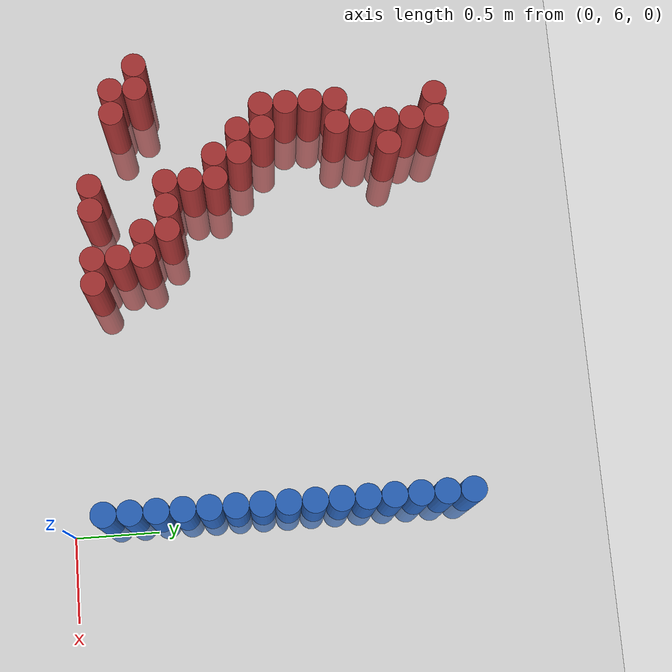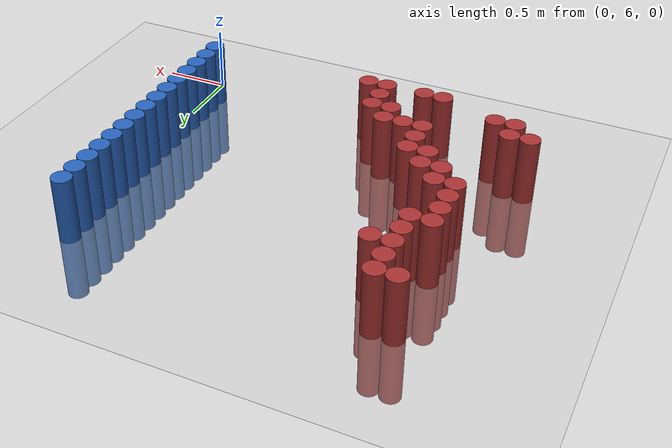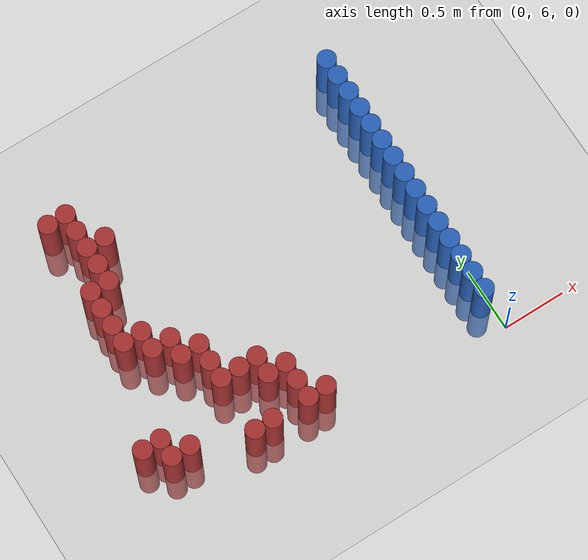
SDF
<sdf version="1.6">
 <world name="default">
  <model name="ground_plane">
   <static>1</static>
   <link name="link">
    <collision name="collision">
     <geometry><plane><normal>0 0 1</normal><size>100 100</size></plane></geometry>
     <surface><friction><ode><mu>100</mu><mu2>50</mu2></ode></friction></surface>
    </collision>
    <visual name="visual">
     <cast_shadows>0</cast_shadows>
     <geometry><plane><normal>0 0 1</normal><size>100 100</size></plane></geometry>
     <material>
      <script><uri>file://media/materials/scripts/gazebo.material</uri><name>Gazebo/Grey</name></script>
     </material>
    </visual>
   </link>
  </model>
  <model name="unit_cylinder_172">
   <static>1</static>
   <pose>-2.775000 6.525000 0.000000 0.000000 0.000000 0.000000</pose>
   <link name="link">
    <inertial>
     <mass>1</mass>
     <inertia><ixx>0.145833</ixx><ixy>0</ixy><ixz>0</ixz><iyy>0.145833</iyy><iyz>0</iyz><izz>0.125</izz></inertia>
    </inertial>
    <collision name="collision">
     <geometry><cylinder><radius>0.075000</radius><length>1</length></cylinder></geometry>
    </collision>
    <visual name="visual">
     <geometry><cylinder><radius>0.075000</radius><length>1</length></cylinder></geometry>
     <material>
      <ambient>0.648000 0.192000 0.192000 1</ambient>
      <diffuse>0.648000 0.192000 0.192000 1</diffuse>
     </material>
     <material>
      <script><name>Gazebo/Grey</name><uri>file://media/materials/scripts/gazebo.material</uri></script>
     </material>
    </visual>
   </link>
  </model>
  <model name="unit_cylinder_175">
   <static>1</static>
   <pose>-2.625000 6.375000 0.000000 0.000000 0.000000 0.000000</pose>
   <link name="link">
    <inertial>
     <mass>1</mass>
     <inertia><ixx>0.145833</ixx><ixy>0</ixy><ixz>0</ixz><iyy>0.145833</iyy><iyz>0</iyz><izz>0.125</izz></inertia>
    </inertial>
    <collision name="collision">
     <geometry><cylinder><radius>0.075000</radius><length>1</length></cylinder></geometry>
    </collision>
    <visual name="visual">
     <geometry><cylinder><radius>0.075000</radius><length>1</length></cylinder></geometry>
     <material>
      <ambient>0.648000 0.192000 0.192000 1</ambient>
      <diffuse>0.648000 0.192000 0.192000 1</diffuse>
     </material>
     <material>
      <script><name>Gazebo/Grey</name><uri>file://media/materials/scripts/gazebo.material</uri></script>
     </material>
    </visual>
   </link>
  </model>
  <model name="unit_cylinder_176">
   <static>1</static>
   <pose>-2.625000 6.525000 0.000000 0.000000 0.000000 0.000000</pose>
   <link name="link">
    <inertial>
     <mass>1</mass>
     <inertia><ixx>0.145833</ixx><ixy>0</ixy><ixz>0</ixz><iyy>0.145833</iyy><iyz>0</iyz><izz>0.125</izz></inertia>
    </inertial>
    <collision name="collision">
     <geometry><cylinder><radius>0.075000</radius><length>1</length></cylinder></geometry>
    </collision>
    <visual name="visual">
     <geometry><cylinder><radius>0.075000</radius><length>1</length></cylinder></geometry>
     <material>
      <ambient>0.648000 0.192000 0.192000 1</ambient>
      <diffuse>0.648000 0.192000 0.192000 1</diffuse>
     </material>
     <material>
      <script><name>Gazebo/Grey</name><uri>file://media/materials/scripts/gazebo.material</uri></script>
     </material>
    </visual>
   </link>
  </model>
  <model name="unit_cylinder_180">
   <static>1</static>
   <pose>-2.475000 6.375000 0.000000 0.000000 0.000000 0.000000</pose>
   <link name="link">
    <inertial>
     <mass>1</mass>
     <inertia><ixx>0.145833</ixx><ixy>0</ixy><ixz>0</ixz><iyy>0.145833</iyy><iyz>0</iyz><izz>0.125</izz></inertia>
    </inertial>
    <collision name="collision">
     <geometry><cylinder><radius>0.075000</radius><length>1</length></cylinder></geometry>
    </collision>
    <visual name="visual">
     <geometry><cylinder><radius>0.075000</radius><length>1</length></cylinder></geometry>
     <material>
      <ambient>0.648000 0.192000 0.192000 1</ambient>
      <diffuse>0.648000 0.192000 0.192000 1</diffuse>
     </material>
     <material>
      <script><name>Gazebo/Grey</name><uri>file://media/materials/scripts/gazebo.material</uri></script>
     </material>
    </visual>
   </link>
  </model>
  <model name="unit_cylinder_181">
   <static>1</static>
   <pose>-2.475000 7.275000 0.000000 0.000000 0.000000 0.000000</pose>
   <link name="link">
    <inertial>
     <mass>1</mass>
     <inertia><ixx>0.145833</ixx><ixy>0</ixy><ixz>0</ixz><iyy>0.145833</iyy><iyz>0</iyz><izz>0.125</izz></inertia>
    </inertial>
    <collision name="collision">
     <geometry><cylinder><radius>0.075000</radius><length>1</length></cylinder></geometry>
    </collision>
    <visual name="visual">
     <geometry><cylinder><radius>0.075000</radius><length>1</length></cylinder></geometry>
     <material>
      <ambient>0.648000 0.192000 0.192000 1</ambient>
      <diffuse>0.648000 0.192000 0.192000 1</diffuse>
     </material>
     <material>
      <script><name>Gazebo/Grey</name><uri>file://media/materials/scripts/gazebo.material</uri></script>
     </material>
    </visual>
   </link>
  </model>
  <model name="unit_cylinder_182">
   <static>1</static>
   <pose>-2.475000 7.425000 0.000000 0.000000 0.000000 0.000000</pose>
   <link name="link">
    <inertial>
     <mass>1</mass>
     <inertia><ixx>0.145833</ixx><ixy>0</ixy><ixz>0</ixz><iyy>0.145833</iyy><iyz>0</iyz><izz>0.125</izz></inertia>
    </inertial>
    <collision name="collision">
     <geometry><cylinder><radius>0.075000</radius><length>1</length></cylinder></geometry>
    </collision>
    <visual name="visual">
     <geometry><cylinder><radius>0.075000</radius><length>1</length></cylinder></geometry>
     <material>
      <ambient>0.648000 0.192000 0.192000 1</ambient>
      <diffuse>0.648000 0.192000 0.192000 1</diffuse>
     </material>
     <material>
      <script><name>Gazebo/Grey</name><uri>file://media/materials/scripts/gazebo.material</uri></script>
     </material>
    </visual>
   </link>
  </model>
  <model name="unit_cylinder_183">
   <static>1</static>
   <pose>-2.475000 7.575000 0.000000 0.000000 0.000000 0.000000</pose>
   <link name="link">
    <inertial>
     <mass>1</mass>
     <inertia><ixx>0.145833</ixx><ixy>0</ixy><ixz>0</ixz><iyy>0.145833</iyy><iyz>0</iyz><izz>0.125</izz></inertia>
    </inertial>
    <collision name="collision">
     <geometry><cylinder><radius>0.075000</radius><length>1</length></cylinder></geometry>
    </collision>
    <visual name="visual">
     <geometry><cylinder><radius>0.075000</radius><length>1</length></cylinder></geometry>
     <material>
      <ambient>0.648000 0.192000 0.192000 1</ambient>
      <diffuse>0.648000 0.192000 0.192000 1</diffuse>
     </material>
     <material>
      <script><name>Gazebo/Grey</name><uri>file://media/materials/scripts/gazebo.material</uri></script>
     </material>
    </visual>
   </link>
  </model>
  <model name="unit_cylinder_184">
   <static>1</static>
   <pose>-2.475000 7.725000 0.000000 0.000000 0.000000 0.000000</pose>
   <link name="link">
    <inertial>
     <mass>1</mass>
     <inertia><ixx>0.145833</ixx><ixy>0</ixy><ixz>0</ixz><iyy>0.145833</iyy><iyz>0</iyz><izz>0.125</izz></inertia>
    </inertial>
    <collision name="collision">
     <geometry><cylinder><radius>0.075000</radius><length>1</length></cylinder></geometry>
    </collision>
    <visual name="visual">
     <geometry><cylinder><radius>0.075000</radius><length>1</length></cylinder></geometry>
     <material>
      <ambient>0.648000 0.192000 0.192000 1</ambient>
      <diffuse>0.648000 0.192000 0.192000 1</diffuse>
     </material>
     <material>
      <script><name>Gazebo/Grey</name><uri>file://media/materials/scripts/gazebo.material</uri></script>
     </material>
    </visual>
   </link>
  </model>
  <model name="unit_cylinder_185">
   <static>1</static>
   <pose>-2.475000 8.325000 0.000000 0.000000 0.000000 0.000000</pose>
   <link name="link">
    <inertial>
     <mass>1</mass>
     <inertia><ixx>0.145833</ixx><ixy>0</ixy><ixz>0</ixz><iyy>0.145833</iyy><iyz>0</iyz><izz>0.125</izz></inertia>
    </inertial>
    <collision name="collision">
     <geometry><cylinder><radius>0.075000</radius><length>1</length></cylinder></geometry>
    </collision>
    <visual name="visual">
     <geometry><cylinder><radius>0.075000</radius><length>1</length></cylinder></geometry>
     <material>
      <ambient>0.648000 0.192000 0.192000 1</ambient>
      <diffuse>0.648000 0.192000 0.192000 1</diffuse>
     </material>
     <material>
      <script><name>Gazebo/Grey</name><uri>file://media/materials/scripts/gazebo.material</uri></script>
     </material>
    </visual>
   </link>
  </model>
  <model name="unit_cylinder_188">
   <static>1</static>
   <pose>-2.325000 7.125000 0.000000 0.000000 0.000000 0.000000</pose>
   <link name="link">
    <inertial>
     <mass>1</mass>
     <inertia><ixx>0.145833</ixx><ixy>0</ixy><ixz>0</ixz><iyy>0.145833</iyy><iyz>0</iyz><izz>0.125</izz></inertia>
    </inertial>
    <collision name="collision">
     <geometry><cylinder><radius>0.075000</radius><length>1</length></cylinder></geometry>
    </collision>
    <visual name="visual">
     <geometry><cylinder><radius>0.075000</radius><length>1</length></cylinder></geometry>
     <material>
      <ambient>0.648000 0.192000 0.192000 1</ambient>
      <diffuse>0.648000 0.192000 0.192000 1</diffuse>
     </material>
     <material>
      <script><name>Gazebo/Grey</name><uri>file://media/materials/scripts/gazebo.material</uri></script>
     </material>
    </visual>
   </link>
  </model>
  <model name="unit_cylinder_189">
   <static>1</static>
   <pose>-2.325000 7.275000 0.000000 0.000000 0.000000 0.000000</pose>
   <link name="link">
    <inertial>
     <mass>1</mass>
     <inertia><ixx>0.145833</ixx><ixy>0</ixy><ixz>0</ixz><iyy>0.145833</iyy><iyz>0</iyz><izz>0.125</izz></inertia>
    </inertial>
    <collision name="collision">
     <geometry><cylinder><radius>0.075000</radius><length>1</length></cylinder></geometry>
    </collision>
    <visual name="visual">
     <geometry><cylinder><radius>0.075000</radius><length>1</length></cylinder></geometry>
     <material>
      <ambient>0.648000 0.192000 0.192000 1</ambient>
      <diffuse>0.648000 0.192000 0.192000 1</diffuse>
     </material>
     <material>
      <script><name>Gazebo/Grey</name><uri>file://media/materials/scripts/gazebo.material</uri></script>
     </material>
    </visual>
   </link>
  </model>
  <model name="unit_cylinder_190">
   <static>1</static>
   <pose>-2.325000 7.725000 0.000000 0.000000 0.000000 0.000000</pose>
   <link name="link">
    <inertial>
     <mass>1</mass>
     <inertia><ixx>0.145833</ixx><ixy>0</ixy><ixz>0</ixz><iyy>0.145833</iyy><iyz>0</iyz><izz>0.125</izz></inertia>
    </inertial>
    <collision name="collision">
     <geometry><cylinder><radius>0.075000</radius><length>1</length></cylinder></geometry>
    </collision>
    <visual name="visual">
     <geometry><cylinder><radius>0.075000</radius><length>1</length></cylinder></geometry>
     <material>
      <ambient>0.648000 0.192000 0.192000 1</ambient>
      <diffuse>0.648000 0.192000 0.192000 1</diffuse>
     </material>
     <material>
      <script><name>Gazebo/Grey</name><uri>file://media/materials/scripts/gazebo.material</uri></script>
     </material>
    </visual>
   </link>
  </model>
  <model name="unit_cylinder_191">
   <static>1</static>
   <pose>-2.325000 7.875000 0.000000 0.000000 0.000000 0.000000</pose>
   <link name="link">
    <inertial>
     <mass>1</mass>
     <inertia><ixx>0.145833</ixx><ixy>0</ixy><ixz>0</ixz><iyy>0.145833</iyy><iyz>0</iyz><izz>0.125</izz></inertia>
    </inertial>
    <collision name="collision">
     <geometry><cylinder><radius>0.075000</radius><length>1</length></cylinder></geometry>
    </collision>
    <visual name="visual">
     <geometry><cylinder><radius>0.075000</radius><length>1</length></cylinder></geometry>
     <material>
      <ambient>0.648000 0.192000 0.192000 1</ambient>
      <diffuse>0.648000 0.192000 0.192000 1</diffuse>
     </material>
     <material>
      <script><name>Gazebo/Grey</name><uri>file://media/materials/scripts/gazebo.material</uri></script>
     </material>
    </visual>
   </link>
  </model>
  <model name="unit_cylinder_192">
   <static>1</static>
   <pose>-2.325000 8.025000 0.000000 0.000000 0.000000 0.000000</pose>
   <link name="link">
    <inertial>
     <mass>1</mass>
     <inertia><ixx>0.145833</ixx><ixy>0</ixy><ixz>0</ixz><iyy>0.145833</iyy><iyz>0</iyz><izz>0.125</izz></inertia>
    </inertial>
    <collision name="collision">
     <geometry><cylinder><radius>0.075000</radius><length>1</length></cylinder></geometry>
    </collision>
    <visual name="visual">
     <geometry><cylinder><radius>0.075000</radius><length>1</length></cylinder></geometry>
     <material>
      <ambient>0.648000 0.192000 0.192000 1</ambient>
      <diffuse>0.648000 0.192000 0.192000 1</diffuse>
     </material>
     <material>
      <script><name>Gazebo/Grey</name><uri>file://media/materials/scripts/gazebo.material</uri></script>
     </material>
    </visual>
   </link>
  </model>
  <model name="unit_cylinder_193">
   <static>1</static>
   <pose>-2.325000 8.175000 0.000000 0.000000 0.000000 0.000000</pose>
   <link name="link">
    <inertial>
     <mass>1</mass>
     <inertia><ixx>0.145833</ixx><ixy>0</ixy><ixz>0</ixz><iyy>0.145833</iyy><iyz>0</iyz><izz>0.125</izz></inertia>
    </inertial>
    <collision name="collision">
     <geometry><cylinder><radius>0.075000</radius><length>1</length></cylinder></geometry>
    </collision>
    <visual name="visual">
     <geometry><cylinder><radius>0.075000</radius><length>1</length></cylinder></geometry>
     <material>
      <ambient>0.648000 0.192000 0.192000 1</ambient>
      <diffuse>0.648000 0.192000 0.192000 1</diffuse>
     </material>
     <material>
      <script><name>Gazebo/Grey</name><uri>file://media/materials/scripts/gazebo.material</uri></script>
     </material>
    </visual>
   </link>
  </model>
  <model name="unit_cylinder_194">
   <static>1</static>
   <pose>-2.325000 8.325000 0.000000 0.000000 0.000000 0.000000</pose>
   <link name="link">
    <inertial>
     <mass>1</mass>
     <inertia><ixx>0.145833</ixx><ixy>0</ixy><ixz>0</ixz><iyy>0.145833</iyy><iyz>0</iyz><izz>0.125</izz></inertia>
    </inertial>
    <collision name="collision">
     <geometry><cylinder><radius>0.075000</radius><length>1</length></cylinder></geometry>
    </collision>
    <visual name="visual">
     <geometry><cylinder><radius>0.075000</radius><length>1</length></cylinder></geometry>
     <material>
      <ambient>0.648000 0.192000 0.192000 1</ambient>
      <diffuse>0.648000 0.192000 0.192000 1</diffuse>
     </material>
     <material>
      <script><name>Gazebo/Grey</name><uri>file://media/materials/scripts/gazebo.material</uri></script>
     </material>
    </visual>
   </link>
  </model>
  <model name="unit_cylinder_196">
   <static>1</static>
   <pose>-2.175000 6.975000 0.000000 0.000000 0.000000 0.000000</pose>
   <link name="link">
    <inertial>
     <mass>1</mass>
     <inertia><ixx>0.145833</ixx><ixy>0</ixy><ixz>0</ixz><iyy>0.145833</iyy><iyz>0</iyz><izz>0.125</izz></inertia>
    </inertial>
    <collision name="collision">
     <geometry><cylinder><radius>0.075000</radius><length>1</length></cylinder></geometry>
    </collision>
    <visual name="visual">
     <geometry><cylinder><radius>0.075000</radius><length>1</length></cylinder></geometry>
     <material>
      <ambient>0.648000 0.192000 0.192000 1</ambient>
      <diffuse>0.648000 0.192000 0.192000 1</diffuse>
     </material>
     <material>
      <script><name>Gazebo/Grey</name><uri>file://media/materials/scripts/gazebo.material</uri></script>
     </material>
    </visual>
   </link>
  </model>
  <model name="unit_cylinder_197">
   <static>1</static>
   <pose>-2.175000 7.125000 0.000000 0.000000 0.000000 0.000000</pose>
   <link name="link">
    <inertial>
     <mass>1</mass>
     <inertia><ixx>0.145833</ixx><ixy>0</ixy><ixz>0</ixz><iyy>0.145833</iyy><iyz>0</iyz><izz>0.125</izz></inertia>
    </inertial>
    <collision name="collision">
     <geometry><cylinder><radius>0.075000</radius><length>1</length></cylinder></geometry>
    </collision>
    <visual name="visual">
     <geometry><cylinder><radius>0.075000</radius><length>1</length></cylinder></geometry>
     <material>
      <ambient>0.648000 0.192000 0.192000 1</ambient>
      <diffuse>0.648000 0.192000 0.192000 1</diffuse>
     </material>
     <material>
      <script><name>Gazebo/Grey</name><uri>file://media/materials/scripts/gazebo.material</uri></script>
     </material>
    </visual>
   </link>
  </model>
  <model name="unit_cylinder_198">
   <static>1</static>
   <pose>-2.175000 8.025000 0.000000 0.000000 0.000000 0.000000</pose>
   <link name="link">
    <inertial>
     <mass>1</mass>
     <inertia><ixx>0.145833</ixx><ixy>0</ixy><ixz>0</ixz><iyy>0.145833</iyy><iyz>0</iyz><izz>0.125</izz></inertia>
    </inertial>
    <collision name="collision">
     <geometry><cylinder><radius>0.075000</radius><length>1</length></cylinder></geometry>
    </collision>
    <visual name="visual">
     <geometry><cylinder><radius>0.075000</radius><length>1</length></cylinder></geometry>
     <material>
      <ambient>0.648000 0.192000 0.192000 1</ambient>
      <diffuse>0.648000 0.192000 0.192000 1</diffuse>
     </material>
     <material>
      <script><name>Gazebo/Grey</name><uri>file://media/materials/scripts/gazebo.material</uri></script>
     </material>
    </visual>
   </link>
  </model>
  <model name="unit_cylinder_199">
   <static>1</static>
   <pose>-2.025000 6.225000 0.000000 0.000000 0.000000 0.000000</pose>
   <link name="link">
    <inertial>
     <mass>1</mass>
     <inertia><ixx>0.145833</ixx><ixy>0</ixy><ixz>0</ixz><iyy>0.145833</iyy><iyz>0</iyz><izz>0.125</izz></inertia>
    </inertial>
    <collision name="collision">
     <geometry><cylinder><radius>0.075000</radius><length>1</length></cylinder></geometry>
    </collision>
    <visual name="visual">
     <geometry><cylinder><radius>0.075000</radius><length>1</length></cylinder></geometry>
     <material>
      <ambient>0.648000 0.192000 0.192000 1</ambient>
      <diffuse>0.648000 0.192000 0.192000 1</diffuse>
     </material>
     <material>
      <script><name>Gazebo/Grey</name><uri>file://media/materials/scripts/gazebo.material</uri></script>
     </material>
    </visual>
   </link>
  </model>
  <model name="unit_cylinder_200">
   <static>1</static>
   <pose>-2.025000 6.675000 0.000000 0.000000 0.000000 0.000000</pose>
   <link name="link">
    <inertial>
     <mass>1</mass>
     <inertia><ixx>0.145833</ixx><ixy>0</ixy><ixz>0</ixz><iyy>0.145833</iyy><iyz>0</iyz><izz>0.125</izz></inertia>
    </inertial>
    <collision name="collision">
     <geometry><cylinder><radius>0.075000</radius><length>1</length></cylinder></geometry>
    </collision>
    <visual name="visual">
     <geometry><cylinder><radius>0.075000</radius><length>1</length></cylinder></geometry>
     <material>
      <ambient>0.648000 0.192000 0.192000 1</ambient>
      <diffuse>0.648000 0.192000 0.192000 1</diffuse>
     </material>
     <material>
      <script><name>Gazebo/Grey</name><uri>file://media/materials/scripts/gazebo.material</uri></script>
     </material>
    </visual>
   </link>
  </model>
  <model name="unit_cylinder_201">
   <static>1</static>
   <pose>-2.025000 6.825000 0.000000 0.000000 0.000000 0.000000</pose>
   <link name="link">
    <inertial>
     <mass>1</mass>
     <inertia><ixx>0.145833</ixx><ixy>0</ixy><ixz>0</ixz><iyy>0.145833</iyy><iyz>0</iyz><izz>0.125</izz></inertia>
    </inertial>
    <collision name="collision">
     <geometry><cylinder><radius>0.075000</radius><length>1</length></cylinder></geometry>
    </collision>
    <visual name="visual">
     <geometry><cylinder><radius>0.075000</radius><length>1</length></cylinder></geometry>
     <material>
      <ambient>0.648000 0.192000 0.192000 1</ambient>
      <diffuse>0.648000 0.192000 0.192000 1</diffuse>
     </material>
     <material>
      <script><name>Gazebo/Grey</name><uri>file://media/materials/scripts/gazebo.material</uri></script>
     </material>
    </visual>
   </link>
  </model>
  <model name="unit_cylinder_202">
   <static>1</static>
   <pose>-2.025000 6.975000 0.000000 0.000000 0.000000 0.000000</pose>
   <link name="link">
    <inertial>
     <mass>1</mass>
     <inertia><ixx>0.145833</ixx><ixy>0</ixy><ixz>0</ixz><iyy>0.145833</iyy><iyz>0</iyz><izz>0.125</izz></inertia>
    </inertial>
    <collision name="collision">
     <geometry><cylinder><radius>0.075000</radius><length>1</length></cylinder></geometry>
    </collision>
    <visual name="visual">
     <geometry><cylinder><radius>0.075000</radius><length>1</length></cylinder></geometry>
     <material>
      <ambient>0.648000 0.192000 0.192000 1</ambient>
      <diffuse>0.648000 0.192000 0.192000 1</diffuse>
     </material>
     <material>
      <script><name>Gazebo/Grey</name><uri>file://media/materials/scripts/gazebo.material</uri></script>
     </material>
    </visual>
   </link>
  </model>
  <model name="unit_cylinder_204">
   <static>1</static>
   <pose>-1.875000 6.225000 0.000000 0.000000 0.000000 0.000000</pose>
   <link name="link">
    <inertial>
     <mass>1</mass>
     <inertia><ixx>0.145833</ixx><ixy>0</ixy><ixz>0</ixz><iyy>0.145833</iyy><iyz>0</iyz><izz>0.125</izz></inertia>
    </inertial>
    <collision name="collision">
     <geometry><cylinder><radius>0.075000</radius><length>1</length></cylinder></geometry>
    </collision>
    <visual name="visual">
     <geometry><cylinder><radius>0.075000</radius><length>1</length></cylinder></geometry>
     <material>
      <ambient>0.648000 0.192000 0.192000 1</ambient>
      <diffuse>0.648000 0.192000 0.192000 1</diffuse>
     </material>
     <material>
      <script><name>Gazebo/Grey</name><uri>file://media/materials/scripts/gazebo.material</uri></script>
     </material>
    </visual>
   </link>
  </model>
  <model name="unit_cylinder_205">
   <static>1</static>
   <pose>-1.875000 6.675000 0.000000 0.000000 0.000000 0.000000</pose>
   <link name="link">
    <inertial>
     <mass>1</mass>
     <inertia><ixx>0.145833</ixx><ixy>0</ixy><ixz>0</ixz><iyy>0.145833</iyy><iyz>0</iyz><izz>0.125</izz></inertia>
    </inertial>
    <collision name="collision">
     <geometry><cylinder><radius>0.075000</radius><length>1</length></cylinder></geometry>
    </collision>
    <visual name="visual">
     <geometry><cylinder><radius>0.075000</radius><length>1</length></cylinder></geometry>
     <material>
      <ambient>0.648000 0.192000 0.192000 1</ambient>
      <diffuse>0.648000 0.192000 0.192000 1</diffuse>
     </material>
     <material>
      <script><name>Gazebo/Grey</name><uri>file://media/materials/scripts/gazebo.material</uri></script>
     </material>
    </visual>
   </link>
  </model>
  <model name="unit_cylinder_208">
   <static>1</static>
   <pose>-1.725000 6.525000 0.000000 0.000000 0.000000 0.000000</pose>
   <link name="link">
    <inertial>
     <mass>1</mass>
     <inertia><ixx>0.145833</ixx><ixy>0</ixy><ixz>0</ixz><iyy>0.145833</iyy><iyz>0</iyz><izz>0.125</izz></inertia>
    </inertial>
    <collision name="collision">
     <geometry><cylinder><radius>0.075000</radius><length>1</length></cylinder></geometry>
    </collision>
    <visual name="visual">
     <geometry><cylinder><radius>0.075000</radius><length>1</length></cylinder></geometry>
     <material>
      <ambient>0.648000 0.192000 0.192000 1</ambient>
      <diffuse>0.648000 0.192000 0.192000 1</diffuse>
     </material>
     <material>
      <script><name>Gazebo/Grey</name><uri>file://media/materials/scripts/gazebo.material</uri></script>
     </material>
    </visual>
   </link>
  </model>
  <model name="unit_cylinder_209">
   <static>1</static>
   <pose>-1.725000 6.675000 0.000000 0.000000 0.000000 0.000000</pose>
   <link name="link">
    <inertial>
     <mass>1</mass>
     <inertia><ixx>0.145833</ixx><ixy>0</ixy><ixz>0</ixz><iyy>0.145833</iyy><iyz>0</iyz><izz>0.125</izz></inertia>
    </inertial>
    <collision name="collision">
     <geometry><cylinder><radius>0.075000</radius><length>1</length></cylinder></geometry>
    </collision>
    <visual name="visual">
     <geometry><cylinder><radius>0.075000</radius><length>1</length></cylinder></geometry>
     <material>
      <ambient>0.648000 0.192000 0.192000 1</ambient>
      <diffuse>0.648000 0.192000 0.192000 1</diffuse>
     </material>
     <material>
      <script><name>Gazebo/Grey</name><uri>file://media/materials/scripts/gazebo.material</uri></script>
     </material>
    </visual>
   </link>
  </model>
  <model name="unit_cylinder_213">
   <static>1</static>
   <pose>-1.575000 6.225000 0.000000 0.000000 0.000000 0.000000</pose>
   <link name="link">
    <inertial>
     <mass>1</mass>
     <inertia><ixx>0.145833</ixx><ixy>0</ixy><ixz>0</ixz><iyy>0.145833</iyy><iyz>0</iyz><izz>0.125</izz></inertia>
    </inertial>
    <collision name="collision">
     <geometry><cylinder><radius>0.075000</radius><length>1</length></cylinder></geometry>
    </collision>
    <visual name="visual">
     <geometry><cylinder><radius>0.075000</radius><length>1</length></cylinder></geometry>
     <material>
      <ambient>0.648000 0.192000 0.192000 1</ambient>
      <diffuse>0.648000 0.192000 0.192000 1</diffuse>
     </material>
     <material>
      <script><name>Gazebo/Grey</name><uri>file://media/materials/scripts/gazebo.material</uri></script>
     </material>
    </visual>
   </link>
  </model>
  <model name="unit_cylinder_214">
   <static>1</static>
   <pose>-1.575000 6.375000 0.000000 0.000000 0.000000 0.000000</pose>
   <link name="link">
    <inertial>
     <mass>1</mass>
     <inertia><ixx>0.145833</ixx><ixy>0</ixy><ixz>0</ixz><iyy>0.145833</iyy><iyz>0</iyz><izz>0.125</izz></inertia>
    </inertial>
    <collision name="collision">
     <geometry><cylinder><radius>0.075000</radius><length>1</length></cylinder></geometry>
    </collision>
    <visual name="visual">
     <geometry><cylinder><radius>0.075000</radius><length>1</length></cylinder></geometry>
     <material>
      <ambient>0.648000 0.192000 0.192000 1</ambient>
      <diffuse>0.648000 0.192000 0.192000 1</diffuse>
     </material>
     <material>
      <script><name>Gazebo/Grey</name><uri>file://media/materials/scripts/gazebo.material</uri></script>
     </material>
    </visual>
   </link>
  </model>
  <model name="unit_cylinder_215">
   <static>1</static>
   <pose>-1.575000 6.525000 0.000000 0.000000 0.000000 0.000000</pose>
   <link name="link">
    <inertial>
     <mass>1</mass>
     <inertia><ixx>0.145833</ixx><ixy>0</ixy><ixz>0</ixz><iyy>0.145833</iyy><iyz>0</iyz><izz>0.125</izz></inertia>
    </inertial>
    <collision name="collision">
     <geometry><cylinder><radius>0.075000</radius><length>1</length></cylinder></geometry>
    </collision>
    <visual name="visual">
     <geometry><cylinder><radius>0.075000</radius><length>1</length></cylinder></geometry>
     <material>
      <ambient>0.648000 0.192000 0.192000 1</ambient>
      <diffuse>0.648000 0.192000 0.192000 1</diffuse>
     </material>
     <material>
      <script><name>Gazebo/Grey</name><uri>file://media/materials/scripts/gazebo.material</uri></script>
     </material>
    </visual>
   </link>
  </model>
  <model name="unit_cylinder_220">
   <static>1</static>
   <pose>-1.425000 6.225000 0.000000 0.000000 0.000000 0.000000</pose>
   <link name="link">
    <inertial>
     <mass>1</mass>
     <inertia><ixx>0.145833</ixx><ixy>0</ixy><ixz>0</ixz><iyy>0.145833</iyy><iyz>0</iyz><izz>0.125</izz></inertia>
    </inertial>
    <collision name="collision">
     <geometry><cylinder><radius>0.075000</radius><length>1</length></cylinder></geometry>
    </collision>
    <visual name="visual">
     <geometry><cylinder><radius>0.075000</radius><length>1</length></cylinder></geometry>
     <material>
      <ambient>0.648000 0.192000 0.192000 1</ambient>
      <diffuse>0.648000 0.192000 0.192000 1</diffuse>
     </material>
     <material>
      <script><name>Gazebo/Grey</name><uri>file://media/materials/scripts/gazebo.material</uri></script>
     </material>
    </visual>
   </link>
  </model>
  <model name="unit_cylinder_258">
   <static>1</static>
   <pose>-0.075000 6.225000 0.000000 0.000000 0.000000 0.000000</pose>
   <link name="link">
    <inertial>
     <mass>1</mass>
     <inertia><ixx>0.145833</ixx><ixy>0</ixy><ixz>0</ixz><iyy>0.145833</iyy><iyz>0</iyz><izz>0.125</izz></inertia>
    </inertial>
    <collision name="collision">
     <geometry><cylinder><radius>0.075000</radius><length>1</length></cylinder></geometry>
    </collision>
    <visual name="visual">
     <geometry><cylinder><radius>0.075000</radius><length>1</length></cylinder></geometry>
     <material>
      <ambient>0.152000 0.379000 0.720000 1</ambient>
      <diffuse>0.152000 0.379000 0.720000 1</diffuse>
     </material>
     <material>
      <script><name>Gazebo/Grey</name><uri>file://media/materials/scripts/gazebo.material</uri></script>
     </material>
    </visual>
   </link>
  </model>
  <model name="unit_cylinder_259">
   <static>1</static>
   <pose>-0.075000 6.375000 0.000000 0.000000 0.000000 0.000000</pose>
   <link name="link">
    <inertial>
     <mass>1</mass>
     <inertia><ixx>0.145833</ixx><ixy>0</ixy><ixz>0</ixz><iyy>0.145833</iyy><iyz>0</iyz><izz>0.125</izz></inertia>
    </inertial>
    <collision name="collision">
     <geometry><cylinder><radius>0.075000</radius><length>1</length></cylinder></geometry>
    </collision>
    <visual name="visual">
     <geometry><cylinder><radius>0.075000</radius><length>1</length></cylinder></geometry>
     <material>
      <ambient>0.152000 0.379000 0.720000 1</ambient>
      <diffuse>0.152000 0.379000 0.720000 1</diffuse>
     </material>
     <material>
      <script><name>Gazebo/Grey</name><uri>file://media/materials/scripts/gazebo.material</uri></script>
     </material>
    </visual>
   </link>
  </model>
  <model name="unit_cylinder_260">
   <static>1</static>
   <pose>-0.075000 6.525000 0.000000 0.000000 0.000000 0.000000</pose>
   <link name="link">
    <inertial>
     <mass>1</mass>
     <inertia><ixx>0.145833</ixx><ixy>0</ixy><ixz>0</ixz><iyy>0.145833</iyy><iyz>0</iyz><izz>0.125</izz></inertia>
    </inertial>
    <collision name="collision">
     <geometry><cylinder><radius>0.075000</radius><length>1</length></cylinder></geometry>
    </collision>
    <visual name="visual">
     <geometry><cylinder><radius>0.075000</radius><length>1</length></cylinder></geometry>
     <material>
      <ambient>0.152000 0.379000 0.720000 1</ambient>
      <diffuse>0.152000 0.379000 0.720000 1</diffuse>
     </material>
     <material>
      <script><name>Gazebo/Grey</name><uri>file://media/materials/scripts/gazebo.material</uri></script>
     </material>
    </visual>
   </link>
  </model>
  <model name="unit_cylinder_261">
   <static>1</static>
   <pose>-0.075000 6.675000 0.000000 0.000000 0.000000 0.000000</pose>
   <link name="link">
    <inertial>
     <mass>1</mass>
     <inertia><ixx>0.145833</ixx><ixy>0</ixy><ixz>0</ixz><iyy>0.145833</iyy><iyz>0</iyz><izz>0.125</izz></inertia>
    </inertial>
    <collision name="collision">
     <geometry><cylinder><radius>0.075000</radius><length>1</length></cylinder></geometry>
    </collision>
    <visual name="visual">
     <geometry><cylinder><radius>0.075000</radius><length>1</length></cylinder></geometry>
     <material>
      <ambient>0.152000 0.379000 0.720000 1</ambient>
      <diffuse>0.152000 0.379000 0.720000 1</diffuse>
     </material>
     <material>
      <script><name>Gazebo/Grey</name><uri>file://media/materials/scripts/gazebo.material</uri></script>
     </material>
    </visual>
   </link>
  </model>
  <model name="unit_cylinder_262">
   <static>1</static>
   <pose>-0.075000 6.825000 0.000000 0.000000 0.000000 0.000000</pose>
   <link name="link">
    <inertial>
     <mass>1</mass>
     <inertia><ixx>0.145833</ixx><ixy>0</ixy><ixz>0</ixz><iyy>0.145833</iyy><iyz>0</iyz><izz>0.125</izz></inertia>
    </inertial>
    <collision name="collision">
     <geometry><cylinder><radius>0.075000</radius><length>1</length></cylinder></geometry>
    </collision>
    <visual name="visual">
     <geometry><cylinder><radius>0.075000</radius><length>1</length></cylinder></geometry>
     <material>
      <ambient>0.152000 0.379000 0.720000 1</ambient>
      <diffuse>0.152000 0.379000 0.720000 1</diffuse>
     </material>
     <material>
      <script><name>Gazebo/Grey</name><uri>file://media/materials/scripts/gazebo.material</uri></script>
     </material>
    </visual>
   </link>
  </model>
  <model name="unit_cylinder_263">
   <static>1</static>
   <pose>-0.075000 6.975000 0.000000 0.000000 0.000000 0.000000</pose>
   <link name="link">
    <inertial>
     <mass>1</mass>
     <inertia><ixx>0.145833</ixx><ixy>0</ixy><ixz>0</ixz><iyy>0.145833</iyy><iyz>0</iyz><izz>0.125</izz></inertia>
    </inertial>
    <collision name="collision">
     <geometry><cylinder><radius>0.075000</radius><length>1</length></cylinder></geometry>
    </collision>
    <visual name="visual">
     <geometry><cylinder><radius>0.075000</radius><length>1</length></cylinder></geometry>
     <material>
      <ambient>0.152000 0.379000 0.720000 1</ambient>
      <diffuse>0.152000 0.379000 0.720000 1</diffuse>
     </material>
     <material>
      <script><name>Gazebo/Grey</name><uri>file://media/materials/scripts/gazebo.material</uri></script>
     </material>
    </visual>
   </link>
  </model>
  <model name="unit_cylinder_264">
   <static>1</static>
   <pose>-0.075000 7.125000 0.000000 0.000000 0.000000 0.000000</pose>
   <link name="link">
    <inertial>
     <mass>1</mass>
     <inertia><ixx>0.145833</ixx><ixy>0</ixy><ixz>0</ixz><iyy>0.145833</iyy><iyz>0</iyz><izz>0.125</izz></inertia>
    </inertial>
    <collision name="collision">
     <geometry><cylinder><radius>0.075000</radius><length>1</length></cylinder></geometry>
    </collision>
    <visual name="visual">
     <geometry><cylinder><radius>0.075000</radius><length>1</length></cylinder></geometry>
     <material>
      <ambient>0.152000 0.379000 0.720000 1</ambient>
      <diffuse>0.152000 0.379000 0.720000 1</diffuse>
     </material>
     <material>
      <script><name>Gazebo/Grey</name><uri>file://media/materials/scripts/gazebo.material</uri></script>
     </material>
    </visual>
   </link>
  </model>
  <model name="unit_cylinder_265">
   <static>1</static>
   <pose>-0.075000 7.275000 0.000000 0.000000 0.000000 0.000000</pose>
   <link name="link">
    <inertial>
     <mass>1</mass>
     <inertia><ixx>0.145833</ixx><ixy>0</ixy><ixz>0</ixz><iyy>0.145833</iyy><iyz>0</iyz><izz>0.125</izz></inertia>
    </inertial>
    <collision name="collision">
     <geometry><cylinder><radius>0.075000</radius><length>1</length></cylinder></geometry>
    </collision>
    <visual name="visual">
     <geometry><cylinder><radius>0.075000</radius><length>1</length></cylinder></geometry>
     <material>
      <ambient>0.152000 0.379000 0.720000 1</ambient>
      <diffuse>0.152000 0.379000 0.720000 1</diffuse>
     </material>
     <material>
      <script><name>Gazebo/Grey</name><uri>file://media/materials/scripts/gazebo.material</uri></script>
     </material>
    </visual>
   </link>
  </model>
  <model name="unit_cylinder_266">
   <static>1</static>
   <pose>-0.075000 7.425000 0.000000 0.000000 0.000000 0.000000</pose>
   <link name="link">
    <inertial>
     <mass>1</mass>
     <inertia><ixx>0.145833</ixx><ixy>0</ixy><ixz>0</ixz><iyy>0.145833</iyy><iyz>0</iyz><izz>0.125</izz></inertia>
    </inertial>
    <collision name="collision">
     <geometry><cylinder><radius>0.075000</radius><length>1</length></cylinder></geometry>
    </collision>
    <visual name="visual">
     <geometry><cylinder><radius>0.075000</radius><length>1</length></cylinder></geometry>
     <material>
      <ambient>0.152000 0.379000 0.720000 1</ambient>
      <diffuse>0.152000 0.379000 0.720000 1</diffuse>
     </material>
     <material>
      <script><name>Gazebo/Grey</name><uri>file://media/materials/scripts/gazebo.material</uri></script>
     </material>
    </visual>
   </link>
  </model>
  <model name="unit_cylinder_267">
   <static>1</static>
   <pose>-0.075000 7.575000 0.000000 0.000000 0.000000 0.000000</pose>
   <link name="link">
    <inertial>
     <mass>1</mass>
     <inertia><ixx>0.145833</ixx><ixy>0</ixy><ixz>0</ixz><iyy>0.145833</iyy><iyz>0</iyz><izz>0.125</izz></inertia>
    </inertial>
    <collision name="collision">
     <geometry><cylinder><radius>0.075000</radius><length>1</length></cylinder></geometry>
    </collision>
    <visual name="visual">
     <geometry><cylinder><radius>0.075000</radius><length>1</length></cylinder></geometry>
     <material>
      <ambient>0.152000 0.379000 0.720000 1</ambient>
      <diffuse>0.152000 0.379000 0.720000 1</diffuse>
     </material>
     <material>
      <script><name>Gazebo/Grey</name><uri>file://media/materials/scripts/gazebo.material</uri></script>
     </material>
    </visual>
   </link>
  </model>
  <model name="unit_cylinder_268">
   <static>1</static>
   <pose>-0.075000 7.725000 0.000000 0.000000 0.000000 0.000000</pose>
   <link name="link">
    <inertial>
     <mass>1</mass>
     <inertia><ixx>0.145833</ixx><ixy>0</ixy><ixz>0</ixz><iyy>0.145833</iyy><iyz>0</iyz><izz>0.125</izz></inertia>
    </inertial>
    <collision name="collision">
     <geometry><cylinder><radius>0.075000</radius><length>1</length></cylinder></geometry>
    </collision>
    <visual name="visual">
     <geometry><cylinder><radius>0.075000</radius><length>1</length></cylinder></geometry>
     <material>
      <ambient>0.152000 0.379000 0.720000 1</ambient>
      <diffuse>0.152000 0.379000 0.720000 1</diffuse>
     </material>
     <material>
      <script><name>Gazebo/Grey</name><uri>file://media/materials/scripts/gazebo.material</uri></script>
     </material>
    </visual>
   </link>
  </model>
  <model name="unit_cylinder_269">
   <static>1</static>
   <pose>-0.075000 7.875000 0.000000 0.000000 0.000000 0.000000</pose>
   <link name="link">
    <inertial>
     <mass>1</mass>
     <inertia><ixx>0.145833</ixx><ixy>0</ixy><ixz>0</ixz><iyy>0.145833</iyy><iyz>0</iyz><izz>0.125</izz></inertia>
    </inertial>
    <collision name="collision">
     <geometry><cylinder><radius>0.075000</radius><length>1</length></cylinder></geometry>
    </collision>
    <visual name="visual">
     <geometry><cylinder><radius>0.075000</radius><length>1</length></cylinder></geometry>
     <material>
      <ambient>0.152000 0.379000 0.720000 1</ambient>
      <diffuse>0.152000 0.379000 0.720000 1</diffuse>
     </material>
     <material>
      <script><name>Gazebo/Grey</name><uri>file://media/materials/scripts/gazebo.material</uri></script>
     </material>
    </visual>
   </link>
  </model>
  <model name="unit_cylinder_270">
   <static>1</static>
   <pose>-0.075000 8.025000 0.000000 0.000000 0.000000 0.000000</pose>
   <link name="link">
    <inertial>
     <mass>1</mass>
     <inertia><ixx>0.145833</ixx><ixy>0</ixy><ixz>0</ixz><iyy>0.145833</iyy><iyz>0</iyz><izz>0.125</izz></inertia>
    </inertial>
    <collision name="collision">
     <geometry><cylinder><radius>0.075000</radius><length>1</length></cylinder></geometry>
    </collision>
    <visual name="visual">
     <geometry><cylinder><radius>0.075000</radius><length>1</length></cylinder></geometry>
     <material>
      <ambient>0.152000 0.379000 0.720000 1</ambient>
      <diffuse>0.152000 0.379000 0.720000 1</diffuse>
     </material>
     <material>
      <script><name>Gazebo/Grey</name><uri>file://media/materials/scripts/gazebo.material</uri></script>
     </material>
    </visual>
   </link>
  </model>
  <model name="unit_cylinder_271">
   <static>1</static>
   <pose>-0.075000 8.175000 0.000000 0.000000 0.000000 0.000000</pose>
   <link name="link">
    <inertial>
     <mass>1</mass>
     <inertia><ixx>0.145833</ixx><ixy>0</ixy><ixz>0</ixz><iyy>0.145833</iyy><iyz>0</iyz><izz>0.125</izz></inertia>
    </inertial>
    <collision name="collision">
     <geometry><cylinder><radius>0.075000</radius><length>1</length></cylinder></geometry>
    </collision>
    <visual name="visual">
     <geometry><cylinder><radius>0.075000</radius><length>1</length></cylinder></geometry>
     <material>
      <ambient>0.152000 0.379000 0.720000 1</ambient>
      <diffuse>0.152000 0.379000 0.720000 1</diffuse>
     </material>
     <material>
      <script><name>Gazebo/Grey</name><uri>file://media/materials/scripts/gazebo.material</uri></script>
     </material>
    </visual>
   </link>
  </model>
  <model name="unit_cylinder_272">
   <static>1</static>
   <pose>-0.075000 8.325000 0.000000 0.000000 0.000000 0.000000</pose>
   <link name="link">
    <inertial>
     <mass>1</mass>
     <inertia><ixx>0.145833</ixx><ixy>0</ixy><ixz>0</ixz><iyy>0.145833</iyy><iyz>0</iyz><izz>0.125</izz></inertia>
    </inertial>
    <collision name="collision">
     <geometry><cylinder><radius>0.075000</radius><length>1</length></cylinder></geometry>
    </collision>
    <visual name="visual">
     <geometry><cylinder><radius>0.075000</radius><length>1</length></cylinder></geometry>
     <material>
      <ambient>0.152000 0.379000 0.720000 1</ambient>
      <diffuse>0.152000 0.379000 0.720000 1</diffuse>
     </material>
     <material>
      <script><name>Gazebo/Grey</name><uri>file://media/materials/scripts/gazebo.material</uri></script>
     </material>
    </visual>
   </link>
  </model>
 </world>
</sdf>
